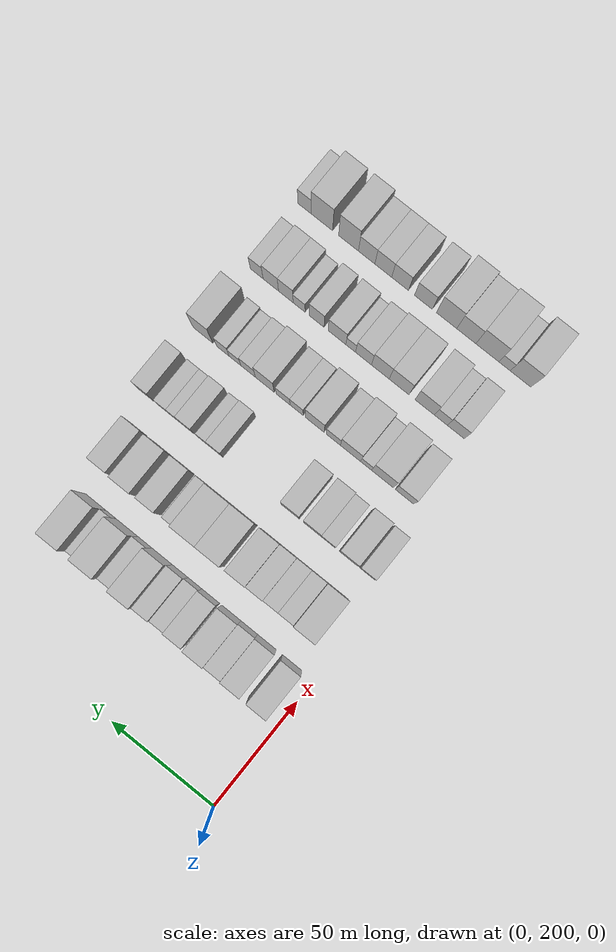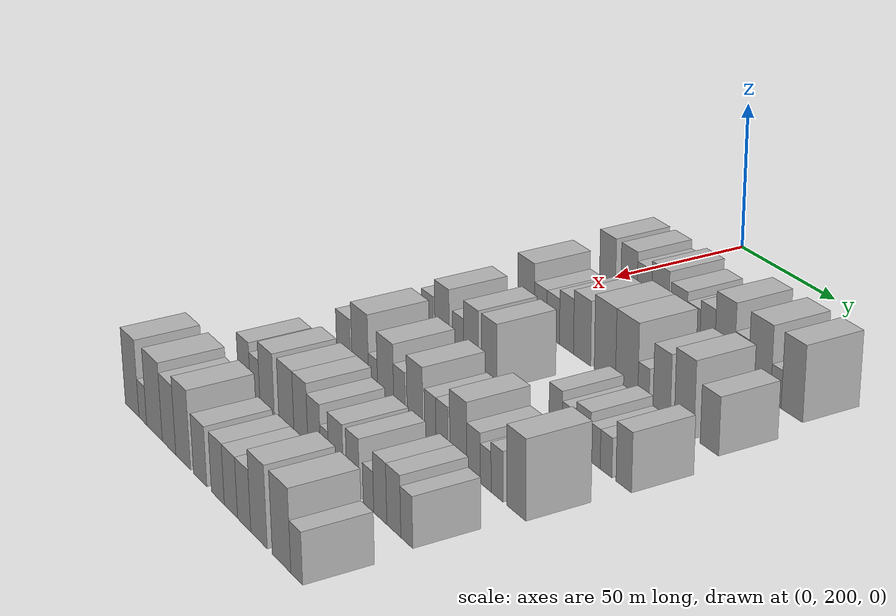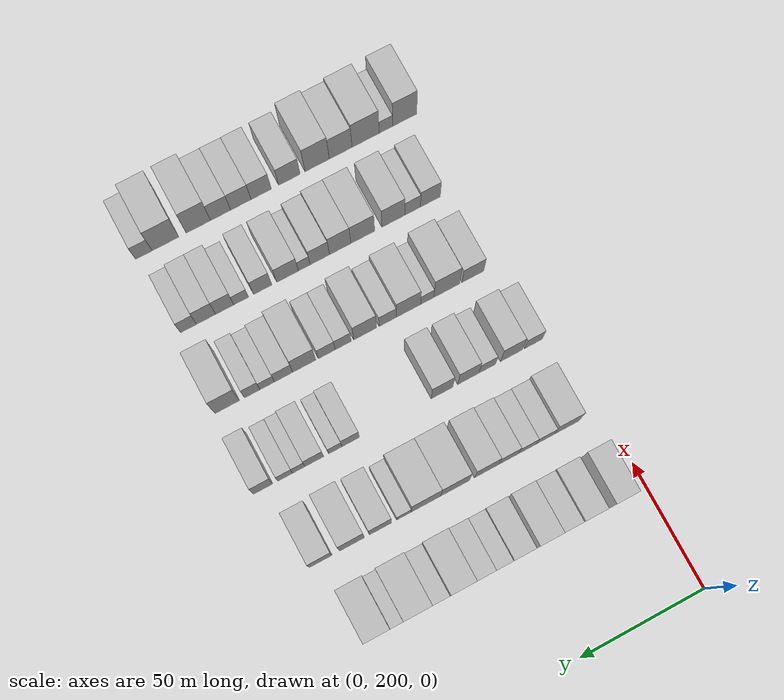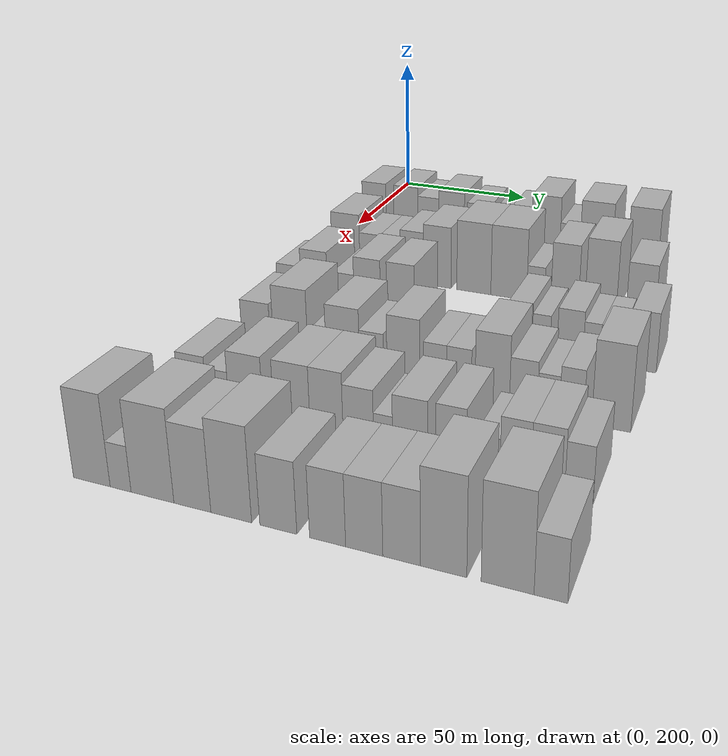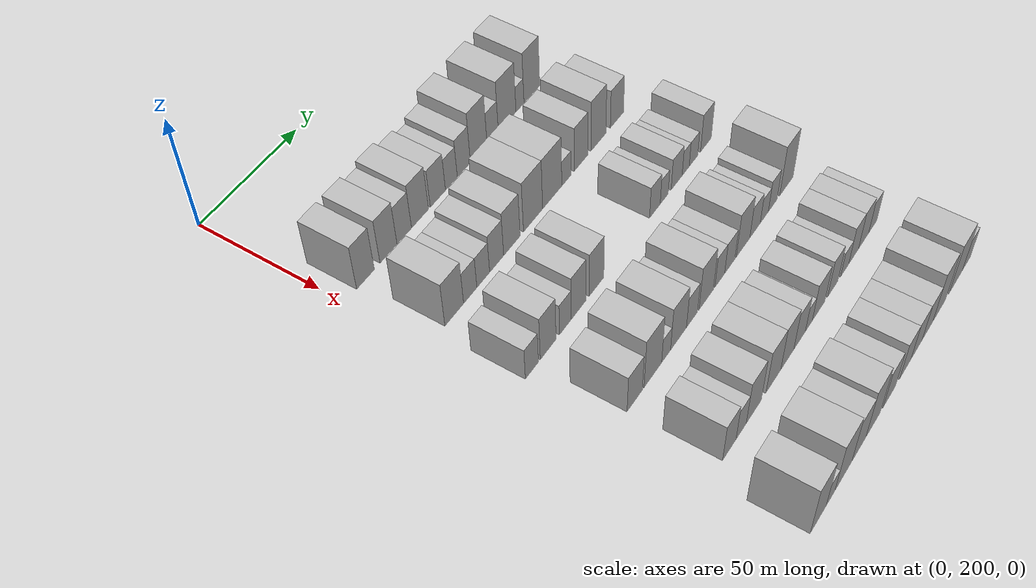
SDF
<sdf version="1.6">
 <world name="default">
  <model name="building_86">
   <static>1</static>
   <pose>50.0000 210.8709 0 0.000000 0.000000 0.000000</pose>
   <link name="link">
    <pose>0 0 10.50 0 0 0</pose>
    <collision name="collision"><geometry><box><size>20.0000 9.3050 21.0000</size></box></geometry></collision>
    <visual name="visual">
     <cast_shadows>0</cast_shadows>
     <geometry><box><size>20.0000 9.3050 21.0000</size></box></geometry>
     <material>
      <script>
       <uri>model://HANNAS_wall/materials/scripts</uri>
       <uri>model://HANNAS_wall/materials/textures</uri>
       <name>vrc/HANNAS_wall</name>
      </script>
     </material>
    </visual>
   </link>
  </model>
  <model name="building_87">
   <static>1</static>
   <pose>50.0000 223.1033 0 0.000000 0.000000 0.000000</pose>
   <link name="link">
    <pose>0 0 10.50 0 0 0</pose>
    <collision name="collision"><geometry><box><size>20.0000 9.1599 21.0000</size></box></geometry></collision>
    <visual name="visual">
     <cast_shadows>0</cast_shadows>
     <geometry><box><size>20.0000 9.1599 21.0000</size></box></geometry>
     <material>
      <script>
       <uri>model://HANNAS_wall/materials/scripts</uri>
       <uri>model://HANNAS_wall/materials/textures</uri>
       <name>vrc/HANNAS_wall</name>
      </script>
     </material>
    </visual>
   </link>
  </model>
  <model name="building_88">
   <static>1</static>
   <pose>50.0000 231.6786 0 0.000000 0.000000 0.000000</pose>
   <link name="link">
    <pose>0 0 9.00 0 0 0</pose>
    <collision name="collision"><geometry><box><size>20.0000 7.9906 18.0000</size></box></geometry></collision>
    <visual name="visual">
     <cast_shadows>0</cast_shadows>
     <geometry><box><size>20.0000 7.9906 18.0000</size></box></geometry>
     <material>
      <script>
       <uri>model://HANNAS_wall/materials/scripts</uri>
       <uri>model://HANNAS_wall/materials/textures</uri>
       <name>vrc/HANNAS_wall</name>
      </script>
     </material>
    </visual>
   </link>
  </model>
  <model name="building_89">
   <static>1</static>
   <pose>50.0000 240.4279 0 0.000000 0.000000 0.000000</pose>
   <link name="link">
    <pose>0 0 10.50 0 0 0</pose>
    <collision name="collision"><geometry><box><size>20.0000 9.5080 21.0000</size></box></geometry></collision>
    <visual name="visual">
     <cast_shadows>0</cast_shadows>
     <geometry><box><size>20.0000 9.5080 21.0000</size></box></geometry>
     <material>
      <script>
       <uri>model://HANNAS_wall/materials/scripts</uri>
       <uri>model://HANNAS_wall/materials/textures</uri>
       <name>vrc/HANNAS_wall</name>
      </script>
     </material>
    </visual>
   </link>
  </model>
  <model name="building_90">
   <static>1</static>
   <pose>50.0000 250.5385 0 0.000000 0.000000 0.000000</pose>
   <link name="link">
    <pose>0 0 9.00 0 0 0</pose>
    <collision name="collision"><geometry><box><size>20.0000 8.7133 18.0000</size></box></geometry></collision>
    <visual name="visual">
     <cast_shadows>0</cast_shadows>
     <geometry><box><size>20.0000 8.7133 18.0000</size></box></geometry>
     <material>
      <script>
       <uri>model://HANNAS_wall/materials/scripts</uri>
       <uri>model://HANNAS_wall/materials/textures</uri>
       <name>vrc/HANNAS_wall</name>
      </script>
     </material>
    </visual>
   </link>
  </model>
  <model name="building_91">
   <static>1</static>
   <pose>50.0000 258.3397 0 0.000000 0.000000 0.000000</pose>
   <link name="link">
    <pose>0 0 7.50 0 0 0</pose>
    <collision name="collision"><geometry><box><size>20.0000 6.8891 15.0000</size></box></geometry></collision>
    <visual name="visual">
     <cast_shadows>0</cast_shadows>
     <geometry><box><size>20.0000 6.8891 15.0000</size></box></geometry>
     <material>
      <script>
       <uri>model://HANNAS_wall/materials/scripts</uri>
       <uri>model://HANNAS_wall/materials/textures</uri>
       <name>vrc/HANNAS_wall</name>
      </script>
     </material>
    </visual>
   </link>
  </model>
  <model name="building_92">
   <static>1</static>
   <pose>50.0000 265.6655 0 0.000000 0.000000 0.000000</pose>
   <link name="link">
    <pose>0 0 9.00 0 0 0</pose>
    <collision name="collision"><geometry><box><size>20.0000 7.7623 18.0000</size></box></geometry></collision>
    <visual name="visual">
     <cast_shadows>0</cast_shadows>
     <geometry><box><size>20.0000 7.7623 18.0000</size></box></geometry>
     <material>
      <script>
       <uri>model://HANNAS_wall/materials/scripts</uri>
       <uri>model://HANNAS_wall/materials/textures</uri>
       <name>vrc/HANNAS_wall</name>
      </script>
     </material>
    </visual>
   </link>
  </model>
  <model name="building_93">
   <static>1</static>
   <pose>50.0000 274.5606 0 0.000000 0.000000 0.000000</pose>
   <link name="link">
    <pose>0 0 12.00 0 0 0</pose>
    <collision name="collision"><geometry><box><size>20.0000 10.0280 24.0000</size></box></geometry></collision>
    <visual name="visual">
     <cast_shadows>0</cast_shadows>
     <geometry><box><size>20.0000 10.0280 24.0000</size></box></geometry>
     <material>
      <script>
       <uri>model://HANNAS_wall/materials/scripts</uri>
       <uri>model://HANNAS_wall/materials/textures</uri>
       <name>vrc/HANNAS_wall</name>
      </script>
     </material>
    </visual>
   </link>
  </model>
  <model name="building_94">
   <static>1</static>
   <pose>50.0000 283.0407 0 0.000000 0.000000 0.000000</pose>
   <link name="link">
    <pose>0 0 7.50 0 0 0</pose>
    <collision name="collision"><geometry><box><size>20.0000 6.9321 15.0000</size></box></geometry></collision>
    <visual name="visual">
     <cast_shadows>0</cast_shadows>
     <geometry><box><size>20.0000 6.9321 15.0000</size></box></geometry>
     <material>
      <script>
       <uri>model://HANNAS_wall/materials/scripts</uri>
       <uri>model://HANNAS_wall/materials/textures</uri>
       <name>vrc/HANNAS_wall</name>
      </script>
     </material>
    </visual>
   </link>
  </model>
  <model name="building_95">
   <static>1</static>
   <pose>50.0000 292.0374 0 0.000000 0.000000 0.000000</pose>
   <link name="link">
    <pose>0 0 12.00 0 0 0</pose>
    <collision name="collision"><geometry><box><size>20.0000 11.0614 24.0000</size></box></geometry></collision>
    <visual name="visual">
     <cast_shadows>0</cast_shadows>
     <geometry><box><size>20.0000 11.0614 24.0000</size></box></geometry>
     <material>
      <script>
       <uri>model://HANNAS_wall/materials/scripts</uri>
       <uri>model://HANNAS_wall/materials/textures</uri>
       <name>vrc/HANNAS_wall</name>
      </script>
     </material>
    </visual>
   </link>
  </model>
  <model name="building_96">
   <static>1</static>
   <pose>50.0000 300.1126 0 0.000000 0.000000 0.000000</pose>
   <link name="link">
    <pose>0 0 6.00 0 0 0</pose>
    <collision name="collision"><geometry><box><size>20.0000 5.0889 12.0000</size></box></geometry></collision>
    <visual name="visual">
     <cast_shadows>0</cast_shadows>
     <geometry><box><size>20.0000 5.0889 12.0000</size></box></geometry>
     <material>
      <script>
       <uri>model://HANNAS_wall/materials/scripts</uri>
       <uri>model://HANNAS_wall/materials/textures</uri>
       <name>vrc/HANNAS_wall</name>
      </script>
     </material>
    </visual>
   </link>
  </model>
  <model name="building_97">
   <static>1</static>
   <pose>50.0000 307.7394 0 0.000000 0.000000 0.000000</pose>
   <link name="link">
    <pose>0 0 12.00 0 0 0</pose>
    <collision name="collision"><geometry><box><size>20.0000 10.1646 24.0000</size></box></geometry></collision>
    <visual name="visual">
     <cast_shadows>0</cast_shadows>
     <geometry><box><size>20.0000 10.1646 24.0000</size></box></geometry>
     <material>
      <script>
       <uri>model://HANNAS_wall/materials/scripts</uri>
       <uri>model://HANNAS_wall/materials/textures</uri>
       <name>vrc/HANNAS_wall</name>
      </script>
     </material>
    </visual>
   </link>
  </model>
  <model name="building_206">
   <static>1</static>
   <pose>82.0000 214.4088 0 0.000000 0.000000 0.000000</pose>
   <link name="link">
    <pose>0 0 10.50 0 0 0</pose>
    <collision name="collision"><geometry><box><size>20.0000 10.1849 21.0000</size></box></geometry></collision>
    <visual name="visual">
     <cast_shadows>0</cast_shadows>
     <geometry><box><size>20.0000 10.1849 21.0000</size></box></geometry>
     <material>
      <script>
       <uri>model://HANNAS_wall/materials/scripts</uri>
       <uri>model://HANNAS_wall/materials/textures</uri>
       <name>vrc/HANNAS_wall</name>
      </script>
     </material>
    </visual>
   </link>
  </model>
  <model name="building_207">
   <static>1</static>
   <pose>82.0000 223.1774 0 0.000000 0.000000 0.000000</pose>
   <link name="link">
    <pose>0 0 7.50 0 0 0</pose>
    <collision name="collision"><geometry><box><size>20.0000 7.3523 15.0000</size></box></geometry></collision>
    <visual name="visual">
     <cast_shadows>0</cast_shadows>
     <geometry><box><size>20.0000 7.3523 15.0000</size></box></geometry>
     <material>
      <script>
       <uri>model://HANNAS_wall/materials/scripts</uri>
       <uri>model://HANNAS_wall/materials/textures</uri>
       <name>vrc/HANNAS_wall</name>
      </script>
     </material>
    </visual>
   </link>
  </model>
  <model name="building_208">
   <static>1</static>
   <pose>82.0000 230.4560 0 0.000000 0.000000 0.000000</pose>
   <link name="link">
    <pose>0 0 7.50 0 0 0</pose>
    <collision name="collision"><geometry><box><size>20.0000 7.2049 15.0000</size></box></geometry></collision>
    <visual name="visual">
     <cast_shadows>0</cast_shadows>
     <geometry><box><size>20.0000 7.2049 15.0000</size></box></geometry>
     <material>
      <script>
       <uri>model://HANNAS_wall/materials/scripts</uri>
       <uri>model://HANNAS_wall/materials/textures</uri>
       <name>vrc/HANNAS_wall</name>
      </script>
     </material>
    </visual>
   </link>
  </model>
  <model name="building_209">
   <static>1</static>
   <pose>82.0000 238.0811 0 0.000000 0.000000 0.000000</pose>
   <link name="link">
    <pose>0 0 9.00 0 0 0</pose>
    <collision name="collision"><geometry><box><size>20.0000 8.0453 18.0000</size></box></geometry></collision>
    <visual name="visual">
     <cast_shadows>0</cast_shadows>
     <geometry><box><size>20.0000 8.0453 18.0000</size></box></geometry>
     <material>
      <script>
       <uri>model://HANNAS_wall/materials/scripts</uri>
       <uri>model://HANNAS_wall/materials/textures</uri>
       <name>vrc/HANNAS_wall</name>
      </script>
     </material>
    </visual>
   </link>
  </model>
  <model name="building_210">
   <static>1</static>
   <pose>82.0000 246.9107 0 0.000000 0.000000 0.000000</pose>
   <link name="link">
    <pose>0 0 10.50 0 0 0</pose>
    <collision name="collision"><geometry><box><size>20.0000 9.6140 21.0000</size></box></geometry></collision>
    <visual name="visual">
     <cast_shadows>0</cast_shadows>
     <geometry><box><size>20.0000 9.6140 21.0000</size></box></geometry>
     <material>
      <script>
       <uri>model://HANNAS_wall/materials/scripts</uri>
       <uri>model://HANNAS_wall/materials/textures</uri>
       <name>vrc/HANNAS_wall</name>
      </script>
     </material>
    </visual>
   </link>
  </model>
  <model name="building_211">
   <static>1</static>
   <pose>82.0000 259.4785 0 0.000000 0.000000 0.000000</pose>
   <link name="link">
    <pose>0 0 12.00 0 0 0</pose>
    <collision name="collision"><geometry><box><size>20.0000 11.5215 24.0000</size></box></geometry></collision>
    <visual name="visual">
     <cast_shadows>0</cast_shadows>
     <geometry><box><size>20.0000 11.5215 24.0000</size></box></geometry>
     <material>
      <script>
       <uri>model://HANNAS_wall/materials/scripts</uri>
       <uri>model://HANNAS_wall/materials/textures</uri>
       <name>vrc/HANNAS_wall</name>
      </script>
     </material>
    </visual>
   </link>
  </model>
  <model name="building_212">
   <static>1</static>
   <pose>82.0000 271.1553 0 0.000000 0.000000 0.000000</pose>
   <link name="link">
    <pose>0 0 12.00 0 0 0</pose>
    <collision name="collision"><geometry><box><size>20.0000 11.8322 24.0000</size></box></geometry></collision>
    <visual name="visual">
     <cast_shadows>0</cast_shadows>
     <geometry><box><size>20.0000 11.8322 24.0000</size></box></geometry>
     <material>
      <script>
       <uri>model://HANNAS_wall/materials/scripts</uri>
       <uri>model://HANNAS_wall/materials/textures</uri>
       <name>vrc/HANNAS_wall</name>
      </script>
     </material>
    </visual>
   </link>
  </model>
  <model name="building_213">
   <static>1</static>
   <pose>82.0000 279.9826 0 0.000000 0.000000 0.000000</pose>
   <link name="link">
    <pose>0 0 6.00 0 0 0</pose>
    <collision name="collision"><geometry><box><size>20.0000 5.8225 12.0000</size></box></geometry></collision>
    <visual name="visual">
     <cast_shadows>0</cast_shadows>
     <geometry><box><size>20.0000 5.8225 12.0000</size></box></geometry>
     <material>
      <script>
       <uri>model://HANNAS_wall/materials/scripts</uri>
       <uri>model://HANNAS_wall/materials/textures</uri>
       <name>vrc/HANNAS_wall</name>
      </script>
     </material>
    </visual>
   </link>
  </model>
  <model name="building_214">
   <static>1</static>
   <pose>82.0000 289.2925 0 0.000000 0.000000 0.000000</pose>
   <link name="link">
    <pose>0 0 10.50 0 0 0</pose>
    <collision name="collision"><geometry><box><size>20.0000 8.7972 21.0000</size></box></geometry></collision>
    <visual name="visual">
     <cast_shadows>0</cast_shadows>
     <geometry><box><size>20.0000 8.7972 21.0000</size></box></geometry>
     <material>
      <script>
       <uri>model://HANNAS_wall/materials/scripts</uri>
       <uri>model://HANNAS_wall/materials/textures</uri>
       <name>vrc/HANNAS_wall</name>
      </script>
     </material>
    </visual>
   </link>
  </model>
  <model name="building_215">
   <static>1</static>
   <pose>82.0000 300.5843 0 0.000000 0.000000 0.000000</pose>
   <link name="link">
    <pose>0 0 12.00 0 0 0</pose>
    <collision name="collision"><geometry><box><size>20.0000 9.7864 24.0000</size></box></geometry></collision>
    <visual name="visual">
     <cast_shadows>0</cast_shadows>
     <geometry><box><size>20.0000 9.7864 24.0000</size></box></geometry>
     <material>
      <script>
       <uri>model://HANNAS_wall/materials/scripts</uri>
       <uri>model://HANNAS_wall/materials/textures</uri>
       <name>vrc/HANNAS_wall</name>
      </script>
     </material>
    </visual>
   </link>
  </model>
  <model name="building_216">
   <static>1</static>
   <pose>82.0000 312.9188 0 0.000000 0.000000 0.000000</pose>
   <link name="link">
    <pose>0 0 9.00 0 0 0</pose>
    <collision name="collision"><geometry><box><size>20.0000 8.8826 18.0000</size></box></geometry></collision>
    <visual name="visual">
     <cast_shadows>0</cast_shadows>
     <geometry><box><size>20.0000 8.8826 18.0000</size></box></geometry>
     <material>
      <script>
       <uri>model://HANNAS_wall/materials/scripts</uri>
       <uri>model://HANNAS_wall/materials/textures</uri>
       <name>vrc/HANNAS_wall</name>
      </script>
     </material>
    </visual>
   </link>
  </model>
  <model name="building_329">
   <static>1</static>
   <pose>114.0000 209.7534 0 0.000000 0.000000 0.000000</pose>
   <link name="link">
    <pose>0 0 7.50 0 0 0</pose>
    <collision name="collision"><geometry><box><size>20.0000 7.2609 15.0000</size></box></geometry></collision>
    <visual name="visual">
     <cast_shadows>0</cast_shadows>
     <geometry><box><size>20.0000 7.2609 15.0000</size></box></geometry>
     <material>
      <script>
       <uri>model://HANNAS_wall/materials/scripts</uri>
       <uri>model://HANNAS_wall/materials/textures</uri>
       <name>vrc/HANNAS_wall</name>
      </script>
     </material>
    </visual>
   </link>
  </model>
  <model name="building_330">
   <static>1</static>
   <pose>114.0000 218.8555 0 0.000000 0.000000 0.000000</pose>
   <link name="link">
    <pose>0 0 10.50 0 0 0</pose>
    <collision name="collision"><geometry><box><size>20.0000 8.9432 21.0000</size></box></geometry></collision>
    <visual name="visual">
     <cast_shadows>0</cast_shadows>
     <geometry><box><size>20.0000 8.9432 21.0000</size></box></geometry>
     <material>
      <script>
       <uri>model://HANNAS_wall/materials/scripts</uri>
       <uri>model://HANNAS_wall/materials/textures</uri>
       <name>vrc/HANNAS_wall</name>
      </script>
     </material>
    </visual>
   </link>
  </model>
  <model name="building_331">
   <static>1</static>
   <pose>114.0000 228.7389 0 0.000000 0.000000 0.000000</pose>
   <link name="link">
    <pose>0 0 7.50 0 0 0</pose>
    <collision name="collision"><geometry><box><size>20.0000 6.8235 15.0000</size></box></geometry></collision>
    <visual name="visual">
     <cast_shadows>0</cast_shadows>
     <geometry><box><size>20.0000 6.8235 15.0000</size></box></geometry>
     <material>
      <script>
       <uri>model://HANNAS_wall/materials/scripts</uri>
       <uri>model://HANNAS_wall/materials/textures</uri>
       <name>vrc/HANNAS_wall</name>
      </script>
     </material>
    </visual>
   </link>
  </model>
  <model name="building_332">
   <static>1</static>
   <pose>114.0000 236.4679 0 0.000000 0.000000 0.000000</pose>
   <link name="link">
    <pose>0 0 10.50 0 0 0</pose>
    <collision name="collision"><geometry><box><size>20.0000 8.6347 21.0000</size></box></geometry></collision>
    <visual name="visual">
     <cast_shadows>0</cast_shadows>
     <geometry><box><size>20.0000 8.6347 21.0000</size></box></geometry>
     <material>
      <script>
       <uri>model://HANNAS_wall/materials/scripts</uri>
       <uri>model://HANNAS_wall/materials/textures</uri>
       <name>vrc/HANNAS_wall</name>
      </script>
     </material>
    </visual>
   </link>
  </model>
  <model name="building_333">
   <static>1</static>
   <pose>114.0000 247.1889 0 0.000000 0.000000 0.000000</pose>
   <link name="link">
    <pose>0 0 10.50 0 0 0</pose>
    <collision name="collision"><geometry><box><size>20.0000 8.8072 21.0000</size></box></geometry></collision>
    <visual name="visual">
     <cast_shadows>0</cast_shadows>
     <geometry><box><size>20.0000 8.8072 21.0000</size></box></geometry>
     <material>
      <script>
       <uri>model://HANNAS_wall/materials/scripts</uri>
       <uri>model://HANNAS_wall/materials/textures</uri>
       <name>vrc/HANNAS_wall</name>
      </script>
     </material>
    </visual>
   </link>
  </model>
  <model name="building_334">
   <static>1</static>
   <pose>114.0000 284.0909 0 0.000000 0.000000 0.000000</pose>
   <link name="link">
    <pose>0 0 7.50 0 0 0</pose>
    <collision name="collision"><geometry><box><size>20.0000 6.9989 15.0000</size></box></geometry></collision>
    <visual name="visual">
     <cast_shadows>0</cast_shadows>
     <geometry><box><size>20.0000 6.9989 15.0000</size></box></geometry>
     <material>
      <script>
       <uri>model://HANNAS_wall/materials/scripts</uri>
       <uri>model://HANNAS_wall/materials/textures</uri>
       <name>vrc/HANNAS_wall</name>
      </script>
     </material>
    </visual>
   </link>
  </model>
  <model name="building_335">
   <static>1</static>
   <pose>114.0000 290.2425 0 0.000000 0.000000 0.000000</pose>
   <link name="link">
    <pose>0 0 6.00 0 0 0</pose>
    <collision name="collision"><geometry><box><size>20.0000 5.3043 12.0000</size></box></geometry></collision>
    <visual name="visual">
     <cast_shadows>0</cast_shadows>
     <geometry><box><size>20.0000 5.3043 12.0000</size></box></geometry>
     <material>
      <script>
       <uri>model://HANNAS_wall/materials/scripts</uri>
       <uri>model://HANNAS_wall/materials/textures</uri>
       <name>vrc/HANNAS_wall</name>
      </script>
     </material>
    </visual>
   </link>
  </model>
  <model name="building_336">
   <static>1</static>
   <pose>114.0000 298.6446 0 0.000000 0.000000 0.000000</pose>
   <link name="link">
    <pose>0 0 7.50 0 0 0</pose>
    <collision name="collision"><geometry><box><size>20.0000 7.4999 15.0000</size></box></geometry></collision>
    <visual name="visual">
     <cast_shadows>0</cast_shadows>
     <geometry><box><size>20.0000 7.4999 15.0000</size></box></geometry>
     <material>
      <script>
       <uri>model://HANNAS_wall/materials/scripts</uri>
       <uri>model://HANNAS_wall/materials/textures</uri>
       <name>vrc/HANNAS_wall</name>
      </script>
     </material>
    </visual>
   </link>
  </model>
  <model name="building_337">
   <static>1</static>
   <pose>114.0000 304.8210 0 0.000000 0.000000 0.000000</pose>
   <link name="link">
    <pose>0 0 6.00 0 0 0</pose>
    <collision name="collision"><geometry><box><size>20.0000 4.8528 12.0000</size></box></geometry></collision>
    <visual name="visual">
     <cast_shadows>0</cast_shadows>
     <geometry><box><size>20.0000 4.8528 12.0000</size></box></geometry>
     <material>
      <script>
       <uri>model://HANNAS_wall/materials/scripts</uri>
       <uri>model://HANNAS_wall/materials/textures</uri>
       <name>vrc/HANNAS_wall</name>
      </script>
     </material>
    </visual>
   </link>
  </model>
  <model name="building_338">
   <static>1</static>
   <pose>114.0000 310.2039 0 0.000000 0.000000 0.000000</pose>
   <link name="link">
    <pose>0 0 6.00 0 0 0</pose>
    <collision name="collision"><geometry><box><size>20.0000 5.9131 12.0000</size></box></geometry></collision>
    <visual name="visual">
     <cast_shadows>0</cast_shadows>
     <geometry><box><size>20.0000 5.9131 12.0000</size></box></geometry>
     <material>
      <script>
       <uri>model://HANNAS_wall/materials/scripts</uri>
       <uri>model://HANNAS_wall/materials/textures</uri>
       <name>vrc/HANNAS_wall</name>
      </script>
     </material>
    </visual>
   </link>
  </model>
  <model name="building_339">
   <static>1</static>
   <pose>114.0000 318.9632 0 0.000000 0.000000 0.000000</pose>
   <link name="link">
    <pose>0 0 9.00 0 0 0</pose>
    <collision name="collision"><geometry><box><size>20.0000 7.6055 18.0000</size></box></geometry></collision>
    <visual name="visual">
     <cast_shadows>0</cast_shadows>
     <geometry><box><size>20.0000 7.6055 18.0000</size></box></geometry>
     <material>
      <script>
       <uri>model://HANNAS_wall/materials/scripts</uri>
       <uri>model://HANNAS_wall/materials/textures</uri>
       <name>vrc/HANNAS_wall</name>
      </script>
     </material>
    </visual>
   </link>
  </model>
  <model name="building_446">
   <static>1</static>
   <pose>146.0000 216.8978 0 0.000000 0.000000 0.000000</pose>
   <link name="link">
    <pose>0 0 9.00 0 0 0</pose>
    <collision name="collision"><geometry><box><size>20.0000 8.9767 18.0000</size></box></geometry></collision>
    <visual name="visual">
     <cast_shadows>0</cast_shadows>
     <geometry><box><size>20.0000 8.9767 18.0000</size></box></geometry>
     <material>
      <script>
       <uri>model://HANNAS_wall/materials/scripts</uri>
       <uri>model://HANNAS_wall/materials/textures</uri>
       <name>vrc/HANNAS_wall</name>
      </script>
     </material>
    </visual>
   </link>
  </model>
  <model name="building_447">
   <static>1</static>
   <pose>146.0000 227.6696 0 0.000000 0.000000 0.000000</pose>
   <link name="link">
    <pose>0 0 12.00 0 0 0</pose>
    <collision name="collision"><geometry><box><size>20.0000 10.5668 24.0000</size></box></geometry></collision>
    <visual name="visual">
     <cast_shadows>0</cast_shadows>
     <geometry><box><size>20.0000 10.5668 24.0000</size></box></geometry>
     <material>
      <script>
       <uri>model://HANNAS_wall/materials/scripts</uri>
       <uri>model://HANNAS_wall/materials/textures</uri>
       <name>vrc/HANNAS_wall</name>
      </script>
     </material>
    </visual>
   </link>
  </model>
  <model name="building_448">
   <static>1</static>
   <pose>146.0000 235.7002 0 0.000000 0.000000 0.000000</pose>
   <link name="link">
    <pose>0 0 6.00 0 0 0</pose>
    <collision name="collision"><geometry><box><size>20.0000 5.4943 12.0000</size></box></geometry></collision>
    <visual name="visual">
     <cast_shadows>0</cast_shadows>
     <geometry><box><size>20.0000 5.4943 12.0000</size></box></geometry>
     <material>
      <script>
       <uri>model://HANNAS_wall/materials/scripts</uri>
       <uri>model://HANNAS_wall/materials/textures</uri>
       <name>vrc/HANNAS_wall</name>
      </script>
     </material>
    </visual>
   </link>
  </model>
  <model name="building_449">
   <static>1</static>
   <pose>146.0000 243.4178 0 0.000000 0.000000 0.000000</pose>
   <link name="link">
    <pose>0 0 10.50 0 0 0</pose>
    <collision name="collision"><geometry><box><size>20.0000 9.9409 21.0000</size></box></geometry></collision>
    <visual name="visual">
     <cast_shadows>0</cast_shadows>
     <geometry><box><size>20.0000 9.9409 21.0000</size></box></geometry>
     <material>
      <script>
       <uri>model://HANNAS_wall/materials/scripts</uri>
       <uri>model://HANNAS_wall/materials/textures</uri>
       <name>vrc/HANNAS_wall</name>
      </script>
     </material>
    </visual>
   </link>
  </model>
  <model name="building_450">
   <static>1</static>
   <pose>146.0000 251.9027 0 0.000000 0.000000 0.000000</pose>
   <link name="link">
    <pose>0 0 7.50 0 0 0</pose>
    <collision name="collision"><geometry><box><size>20.0000 7.0290 15.0000</size></box></geometry></collision>
    <visual name="visual">
     <cast_shadows>0</cast_shadows>
     <geometry><box><size>20.0000 7.0290 15.0000</size></box></geometry>
     <material>
      <script>
       <uri>model://HANNAS_wall/materials/scripts</uri>
       <uri>model://HANNAS_wall/materials/textures</uri>
       <name>vrc/HANNAS_wall</name>
      </script>
     </material>
    </visual>
   </link>
  </model>
  <model name="building_451">
   <static>1</static>
   <pose>146.0000 261.0871 0 0.000000 0.000000 0.000000</pose>
   <link name="link">
    <pose>0 0 10.50 0 0 0</pose>
    <collision name="collision"><geometry><box><size>20.0000 9.3398 21.0000</size></box></geometry></collision>
    <visual name="visual">
     <cast_shadows>0</cast_shadows>
     <geometry><box><size>20.0000 9.3398 21.0000</size></box></geometry>
     <material>
      <script>
       <uri>model://HANNAS_wall/materials/scripts</uri>
       <uri>model://HANNAS_wall/materials/textures</uri>
       <name>vrc/HANNAS_wall</name>
      </script>
     </material>
    </visual>
   </link>
  </model>
  <model name="building_452">
   <static>1</static>
   <pose>146.0000 270.0043 0 0.000000 0.000000 0.000000</pose>
   <link name="link">
    <pose>0 0 7.50 0 0 0</pose>
    <collision name="collision"><geometry><box><size>20.0000 6.4947 15.0000</size></box></geometry></collision>
    <visual name="visual">
     <cast_shadows>0</cast_shadows>
     <geometry><box><size>20.0000 6.4947 15.0000</size></box></geometry>
     <material>
      <script>
       <uri>model://HANNAS_wall/materials/scripts</uri>
       <uri>model://HANNAS_wall/materials/textures</uri>
       <name>vrc/HANNAS_wall</name>
      </script>
     </material>
    </visual>
   </link>
  </model>
  <model name="building_453">
   <static>1</static>
   <pose>146.0000 276.6869 0 0.000000 0.000000 0.000000</pose>
   <link name="link">
    <pose>0 0 7.50 0 0 0</pose>
    <collision name="collision"><geometry><box><size>20.0000 6.8703 15.0000</size></box></geometry></collision>
    <visual name="visual">
     <cast_shadows>0</cast_shadows>
     <geometry><box><size>20.0000 6.8703 15.0000</size></box></geometry>
     <material>
      <script>
       <uri>model://HANNAS_wall/materials/scripts</uri>
       <uri>model://HANNAS_wall/materials/textures</uri>
       <name>vrc/HANNAS_wall</name>
      </script>
     </material>
    </visual>
   </link>
  </model>
  <model name="building_454">
   <static>1</static>
   <pose>146.0000 285.7940 0 0.000000 0.000000 0.000000</pose>
   <link name="link">
    <pose>0 0 10.50 0 0 0</pose>
    <collision name="collision"><geometry><box><size>20.0000 9.3439 21.0000</size></box></geometry></collision>
    <visual name="visual">
     <cast_shadows>0</cast_shadows>
     <geometry><box><size>20.0000 9.3439 21.0000</size></box></geometry>
     <material>
      <script>
       <uri>model://HANNAS_wall/materials/scripts</uri>
       <uri>model://HANNAS_wall/materials/textures</uri>
       <name>vrc/HANNAS_wall</name>
      </script>
     </material>
    </visual>
   </link>
  </model>
  <model name="building_455">
   <static>1</static>
   <pose>146.0000 294.1418 0 0.000000 0.000000 0.000000</pose>
   <link name="link">
    <pose>0 0 7.50 0 0 0</pose>
    <collision name="collision"><geometry><box><size>20.0000 7.3519 15.0000</size></box></geometry></collision>
    <visual name="visual">
     <cast_shadows>0</cast_shadows>
     <geometry><box><size>20.0000 7.3519 15.0000</size></box></geometry>
     <material>
      <script>
       <uri>model://HANNAS_wall/materials/scripts</uri>
       <uri>model://HANNAS_wall/materials/textures</uri>
       <name>vrc/HANNAS_wall</name>
      </script>
     </material>
    </visual>
   </link>
  </model>
  <model name="building_456">
   <static>1</static>
   <pose>146.0000 300.7060 0 0.000000 0.000000 0.000000</pose>
   <link name="link">
    <pose>0 0 6.00 0 0 0</pose>
    <collision name="collision"><geometry><box><size>20.0000 5.7764 12.0000</size></box></geometry></collision>
    <visual name="visual">
     <cast_shadows>0</cast_shadows>
     <geometry><box><size>20.0000 5.7764 12.0000</size></box></geometry>
     <material>
      <script>
       <uri>model://HANNAS_wall/materials/scripts</uri>
       <uri>model://HANNAS_wall/materials/textures</uri>
       <name>vrc/HANNAS_wall</name>
      </script>
     </material>
    </visual>
   </link>
  </model>
  <model name="building_457">
   <static>1</static>
   <pose>146.0000 306.7237 0 0.000000 0.000000 0.000000</pose>
   <link name="link">
    <pose>0 0 7.50 0 0 0</pose>
    <collision name="collision"><geometry><box><size>20.0000 6.2591 15.0000</size></box></geometry></collision>
    <visual name="visual">
     <cast_shadows>0</cast_shadows>
     <geometry><box><size>20.0000 6.2591 15.0000</size></box></geometry>
     <material>
      <script>
       <uri>model://HANNAS_wall/materials/scripts</uri>
       <uri>model://HANNAS_wall/materials/textures</uri>
       <name>vrc/HANNAS_wall</name>
      </script>
     </material>
    </visual>
   </link>
  </model>
  <model name="building_458">
   <static>1</static>
   <pose>146.0000 316.7548 0 0.000000 0.000000 0.000000</pose>
   <link name="link">
    <pose>0 0 12.00 0 0 0</pose>
    <collision name="collision"><geometry><box><size>20.0000 9.8031 24.0000</size></box></geometry></collision>
    <visual name="visual">
     <cast_shadows>0</cast_shadows>
     <geometry><box><size>20.0000 9.8031 24.0000</size></box></geometry>
     <material>
      <script>
       <uri>model://HANNAS_wall/materials/scripts</uri>
       <uri>model://HANNAS_wall/materials/textures</uri>
       <name>vrc/HANNAS_wall</name>
      </script>
     </material>
    </visual>
   </link>
  </model>
  <model name="building_564">
   <static>1</static>
   <pose>178.0000 216.9423 0 0.000000 0.000000 0.000000</pose>
   <link name="link">
    <pose>0 0 9.00 0 0 0</pose>
    <collision name="collision"><geometry><box><size>20.0000 8.2424 18.0000</size></box></geometry></collision>
    <visual name="visual">
     <cast_shadows>0</cast_shadows>
     <geometry><box><size>20.0000 8.2424 18.0000</size></box></geometry>
     <material>
      <script>
       <uri>model://HANNAS_wall/materials/scripts</uri>
       <uri>model://HANNAS_wall/materials/textures</uri>
       <name>vrc/HANNAS_wall</name>
      </script>
     </material>
    </visual>
   </link>
  </model>
  <model name="building_565">
   <static>1</static>
   <pose>178.0000 224.2583 0 0.000000 0.000000 0.000000</pose>
   <link name="link">
    <pose>0 0 7.50 0 0 0</pose>
    <collision name="collision"><geometry><box><size>20.0000 6.3896 15.0000</size></box></geometry></collision>
    <visual name="visual">
     <cast_shadows>0</cast_shadows>
     <geometry><box><size>20.0000 6.3896 15.0000</size></box></geometry>
     <material>
      <script>
       <uri>model://HANNAS_wall/materials/scripts</uri>
       <uri>model://HANNAS_wall/materials/textures</uri>
       <name>vrc/HANNAS_wall</name>
      </script>
     </material>
    </visual>
   </link>
  </model>
  <model name="building_566">
   <static>1</static>
   <pose>178.0000 232.2439 0 0.000000 0.000000 0.000000</pose>
   <link name="link">
    <pose>0 0 10.50 0 0 0</pose>
    <collision name="collision"><geometry><box><size>20.0000 9.5816 21.0000</size></box></geometry></collision>
    <visual name="visual">
     <cast_shadows>0</cast_shadows>
     <geometry><box><size>20.0000 9.5816 21.0000</size></box></geometry>
     <material>
      <script>
       <uri>model://HANNAS_wall/materials/scripts</uri>
       <uri>model://HANNAS_wall/materials/textures</uri>
       <name>vrc/HANNAS_wall</name>
      </script>
     </material>
    </visual>
   </link>
  </model>
  <model name="building_567">
   <static>1</static>
   <pose>178.0000 244.9310 0 0.000000 0.000000 0.000000</pose>
   <link name="link">
    <pose>0 0 10.50 0 0 0</pose>
    <collision name="collision"><geometry><box><size>20.0000 9.7926 21.0000</size></box></geometry></collision>
    <visual name="visual">
     <cast_shadows>0</cast_shadows>
     <geometry><box><size>20.0000 9.7926 21.0000</size></box></geometry>
     <material>
      <script>
       <uri>model://HANNAS_wall/materials/scripts</uri>
       <uri>model://HANNAS_wall/materials/textures</uri>
       <name>vrc/HANNAS_wall</name>
      </script>
     </material>
    </visual>
   </link>
  </model>
  <model name="building_568">
   <static>1</static>
   <pose>178.0000 254.2170 0 0.000000 0.000000 0.000000</pose>
   <link name="link">
    <pose>0 0 10.50 0 0 0</pose>
    <collision name="collision"><geometry><box><size>20.0000 8.7796 21.0000</size></box></geometry></collision>
    <visual name="visual">
     <cast_shadows>0</cast_shadows>
     <geometry><box><size>20.0000 8.7796 21.0000</size></box></geometry>
     <material>
      <script>
       <uri>model://HANNAS_wall/materials/scripts</uri>
       <uri>model://HANNAS_wall/materials/textures</uri>
       <name>vrc/HANNAS_wall</name>
      </script>
     </material>
    </visual>
   </link>
  </model>
  <model name="building_569">
   <static>1</static>
   <pose>178.0000 262.5636 0 0.000000 0.000000 0.000000</pose>
   <link name="link">
    <pose>0 0 9.00 0 0 0</pose>
    <collision name="collision"><geometry><box><size>20.0000 7.9135 18.0000</size></box></geometry></collision>
    <visual name="visual">
     <cast_shadows>0</cast_shadows>
     <geometry><box><size>20.0000 7.9135 18.0000</size></box></geometry>
     <material>
      <script>
       <uri>model://HANNAS_wall/materials/scripts</uri>
       <uri>model://HANNAS_wall/materials/textures</uri>
       <name>vrc/HANNAS_wall</name>
      </script>
     </material>
    </visual>
   </link>
  </model>
  <model name="building_570">
   <static>1</static>
   <pose>178.0000 268.9465 0 0.000000 0.000000 0.000000</pose>
   <link name="link">
    <pose>0 0 6.00 0 0 0</pose>
    <collision name="collision"><geometry><box><size>20.0000 4.8524 12.0000</size></box></geometry></collision>
    <visual name="visual">
     <cast_shadows>0</cast_shadows>
     <geometry><box><size>20.0000 4.8524 12.0000</size></box></geometry>
     <material>
      <script>
       <uri>model://HANNAS_wall/materials/scripts</uri>
       <uri>model://HANNAS_wall/materials/textures</uri>
       <name>vrc/HANNAS_wall</name>
      </script>
     </material>
    </visual>
   </link>
  </model>
  <model name="building_571">
   <static>1</static>
   <pose>178.0000 275.7909 0 0.000000 0.000000 0.000000</pose>
   <link name="link">
    <pose>0 0 9.00 0 0 0</pose>
    <collision name="collision"><geometry><box><size>20.0000 8.8364 18.0000</size></box></geometry></collision>
    <visual name="visual">
     <cast_shadows>0</cast_shadows>
     <geometry><box><size>20.0000 8.8364 18.0000</size></box></geometry>
     <material>
      <script>
       <uri>model://HANNAS_wall/materials/scripts</uri>
       <uri>model://HANNAS_wall/materials/textures</uri>
       <name>vrc/HANNAS_wall</name>
      </script>
     </material>
    </visual>
   </link>
  </model>
  <model name="building_572">
   <static>1</static>
   <pose>178.0000 285.9431 0 0.000000 0.000000 0.000000</pose>
   <link name="link">
    <pose>0 0 9.00 0 0 0</pose>
    <collision name="collision"><geometry><box><size>20.0000 7.4680 18.0000</size></box></geometry></collision>
    <visual name="visual">
     <cast_shadows>0</cast_shadows>
     <geometry><box><size>20.0000 7.4680 18.0000</size></box></geometry>
     <material>
      <script>
       <uri>model://HANNAS_wall/materials/scripts</uri>
       <uri>model://HANNAS_wall/materials/textures</uri>
       <name>vrc/HANNAS_wall</name>
      </script>
     </material>
    </visual>
   </link>
  </model>
  <model name="building_573">
   <static>1</static>
   <pose>178.0000 294.6737 0 0.000000 0.000000 0.000000</pose>
   <link name="link">
    <pose>0 0 6.00 0 0 0</pose>
    <collision name="collision"><geometry><box><size>20.0000 5.9931 12.0000</size></box></geometry></collision>
    <visual name="visual">
     <cast_shadows>0</cast_shadows>
     <geometry><box><size>20.0000 5.9931 12.0000</size></box></geometry>
     <material>
      <script>
       <uri>model://HANNAS_wall/materials/scripts</uri>
       <uri>model://HANNAS_wall/materials/textures</uri>
       <name>vrc/HANNAS_wall</name>
      </script>
     </material>
    </visual>
   </link>
  </model>
  <model name="building_574">
   <static>1</static>
   <pose>178.0000 301.3433 0 0.000000 0.000000 0.000000</pose>
   <link name="link">
    <pose>0 0 9.00 0 0 0</pose>
    <collision name="collision"><geometry><box><size>20.0000 7.3462 18.0000</size></box></geometry></collision>
    <visual name="visual">
     <cast_shadows>0</cast_shadows>
     <geometry><box><size>20.0000 7.3462 18.0000</size></box></geometry>
     <material>
      <script>
       <uri>model://HANNAS_wall/materials/scripts</uri>
       <uri>model://HANNAS_wall/materials/textures</uri>
       <name>vrc/HANNAS_wall</name>
      </script>
     </material>
    </visual>
   </link>
  </model>
  <model name="building_575">
   <static>1</static>
   <pose>178.0000 308.8822 0 0.000000 0.000000 0.000000</pose>
   <link name="link">
    <pose>0 0 9.00 0 0 0</pose>
    <collision name="collision"><geometry><box><size>20.0000 7.7316 18.0000</size></box></geometry></collision>
    <visual name="visual">
     <cast_shadows>0</cast_shadows>
     <geometry><box><size>20.0000 7.7316 18.0000</size></box></geometry>
     <material>
      <script>
       <uri>model://HANNAS_wall/materials/scripts</uri>
       <uri>model://HANNAS_wall/materials/textures</uri>
       <name>vrc/HANNAS_wall</name>
      </script>
     </material>
    </visual>
   </link>
  </model>
  <model name="building_576">
   <static>1</static>
   <pose>178.0000 315.9718 0 0.000000 0.000000 0.000000</pose>
   <link name="link">
    <pose>0 0 7.50 0 0 0</pose>
    <collision name="collision"><geometry><box><size>20.0000 6.4474 15.0000</size></box></geometry></collision>
    <visual name="visual">
     <cast_shadows>0</cast_shadows>
     <geometry><box><size>20.0000 6.4474 15.0000</size></box></geometry>
     <material>
      <script>
       <uri>model://HANNAS_wall/materials/scripts</uri>
       <uri>model://HANNAS_wall/materials/textures</uri>
       <name>vrc/HANNAS_wall</name>
      </script>
     </material>
    </visual>
   </link>
  </model>
  <model name="building_682">
   <static>1</static>
   <pose>210.0000 210.2487 0 0.000000 0.000000 0.000000</pose>
   <link name="link">
    <pose>0 0 12.00 0 0 0</pose>
    <collision name="collision"><geometry><box><size>20.0000 10.1204 24.0000</size></box></geometry></collision>
    <visual name="visual">
     <cast_shadows>0</cast_shadows>
     <geometry><box><size>20.0000 10.1204 24.0000</size></box></geometry>
     <material>
      <script>
       <uri>model://HANNAS_wall/materials/scripts</uri>
       <uri>model://HANNAS_wall/materials/textures</uri>
       <name>vrc/HANNAS_wall</name>
      </script>
     </material>
    </visual>
   </link>
  </model>
  <model name="building_683">
   <static>1</static>
   <pose>210.0000 218.1369 0 0.000000 0.000000 0.000000</pose>
   <link name="link">
    <pose>0 0 6.00 0 0 0</pose>
    <collision name="collision"><geometry><box><size>20.0000 5.6560 12.0000</size></box></geometry></collision>
    <visual name="visual">
     <cast_shadows>0</cast_shadows>
     <geometry><box><size>20.0000 5.6560 12.0000</size></box></geometry>
     <material>
      <script>
       <uri>model://HANNAS_wall/materials/scripts</uri>
       <uri>model://HANNAS_wall/materials/textures</uri>
       <name>vrc/HANNAS_wall</name>
      </script>
     </material>
    </visual>
   </link>
  </model>
  <model name="building_684">
   <static>1</static>
   <pose>210.0000 226.6113 0 0.000000 0.000000 0.000000</pose>
   <link name="link">
    <pose>0 0 12.00 0 0 0</pose>
    <collision name="collision"><geometry><box><size>20.0000 11.2928 24.0000</size></box></geometry></collision>
    <visual name="visual">
     <cast_shadows>0</cast_shadows>
     <geometry><box><size>20.0000 11.2928 24.0000</size></box></geometry>
     <material>
      <script>
       <uri>model://HANNAS_wall/materials/scripts</uri>
       <uri>model://HANNAS_wall/materials/textures</uri>
       <name>vrc/HANNAS_wall</name>
      </script>
     </material>
    </visual>
   </link>
  </model>
  <model name="building_685">
   <static>1</static>
   <pose>210.0000 236.9847 0 0.000000 0.000000 0.000000</pose>
   <link name="link">
    <pose>0 0 10.50 0 0 0</pose>
    <collision name="collision"><geometry><box><size>20.0000 9.4541 21.0000</size></box></geometry></collision>
    <visual name="visual">
     <cast_shadows>0</cast_shadows>
     <geometry><box><size>20.0000 9.4541 21.0000</size></box></geometry>
     <material>
      <script>
       <uri>model://HANNAS_wall/materials/scripts</uri>
       <uri>model://HANNAS_wall/materials/textures</uri>
       <name>vrc/HANNAS_wall</name>
      </script>
     </material>
    </visual>
   </link>
  </model>
  <model name="building_686">
   <static>1</static>
   <pose>210.0000 246.7764 0 0.000000 0.000000 0.000000</pose>
   <link name="link">
    <pose>0 0 12.00 0 0 0</pose>
    <collision name="collision"><geometry><box><size>20.0000 10.1292 24.0000</size></box></geometry></collision>
    <visual name="visual">
     <cast_shadows>0</cast_shadows>
     <geometry><box><size>20.0000 10.1292 24.0000</size></box></geometry>
     <material>
      <script>
       <uri>model://HANNAS_wall/materials/scripts</uri>
       <uri>model://HANNAS_wall/materials/textures</uri>
       <name>vrc/HANNAS_wall</name>
      </script>
     </material>
    </visual>
   </link>
  </model>
  <model name="building_687">
   <static>1</static>
   <pose>210.0000 258.2898 0 0.000000 0.000000 0.000000</pose>
   <link name="link">
    <pose>0 0 9.00 0 0 0</pose>
    <collision name="collision"><geometry><box><size>20.0000 8.8977 18.0000</size></box></geometry></collision>
    <visual name="visual">
     <cast_shadows>0</cast_shadows>
     <geometry><box><size>20.0000 8.8977 18.0000</size></box></geometry>
     <material>
      <script>
       <uri>model://HANNAS_wall/materials/scripts</uri>
       <uri>model://HANNAS_wall/materials/textures</uri>
       <name>vrc/HANNAS_wall</name>
      </script>
     </material>
    </visual>
   </link>
  </model>
  <model name="building_688">
   <static>1</static>
   <pose>210.0000 269.9195 0 0.000000 0.000000 0.000000</pose>
   <link name="link">
    <pose>0 0 9.00 0 0 0</pose>
    <collision name="collision"><geometry><box><size>20.0000 8.3618 18.0000</size></box></geometry></collision>
    <visual name="visual">
     <cast_shadows>0</cast_shadows>
     <geometry><box><size>20.0000 8.3618 18.0000</size></box></geometry>
     <material>
      <script>
       <uri>model://HANNAS_wall/materials/scripts</uri>
       <uri>model://HANNAS_wall/materials/textures</uri>
       <name>vrc/HANNAS_wall</name>
      </script>
     </material>
    </visual>
   </link>
  </model>
  <model name="building_689">
   <static>1</static>
   <pose>210.0000 278.2999 0 0.000000 0.000000 0.000000</pose>
   <link name="link">
    <pose>0 0 9.00 0 0 0</pose>
    <collision name="collision"><geometry><box><size>20.0000 8.3990 18.0000</size></box></geometry></collision>
    <visual name="visual">
     <cast_shadows>0</cast_shadows>
     <geometry><box><size>20.0000 8.3990 18.0000</size></box></geometry>
     <material>
      <script>
       <uri>model://HANNAS_wall/materials/scripts</uri>
       <uri>model://HANNAS_wall/materials/textures</uri>
       <name>vrc/HANNAS_wall</name>
      </script>
     </material>
    </visual>
   </link>
  </model>
  <model name="building_690">
   <static>1</static>
   <pose>210.0000 286.6241 0 0.000000 0.000000 0.000000</pose>
   <link name="link">
    <pose>0 0 9.00 0 0 0</pose>
    <collision name="collision"><geometry><box><size>20.0000 8.2493 18.0000</size></box></geometry></collision>
    <visual name="visual">
     <cast_shadows>0</cast_shadows>
     <geometry><box><size>20.0000 8.2493 18.0000</size></box></geometry>
     <material>
      <script>
       <uri>model://HANNAS_wall/materials/scripts</uri>
       <uri>model://HANNAS_wall/materials/textures</uri>
       <name>vrc/HANNAS_wall</name>
      </script>
     </material>
    </visual>
   </link>
  </model>
  <model name="building_691">
   <static>1</static>
   <pose>210.0000 295.7165 0 0.000000 0.000000 0.000000</pose>
   <link name="link">
    <pose>0 0 12.00 0 0 0</pose>
    <collision name="collision"><geometry><box><size>20.0000 9.9354 24.0000</size></box></geometry></collision>
    <visual name="visual">
     <cast_shadows>0</cast_shadows>
     <geometry><box><size>20.0000 9.9354 24.0000</size></box></geometry>
     <material>
      <script>
       <uri>model://HANNAS_wall/materials/scripts</uri>
       <uri>model://HANNAS_wall/materials/textures</uri>
       <name>vrc/HANNAS_wall</name>
      </script>
     </material>
    </visual>
   </link>
  </model>
  <model name="building_692">
   <static>1</static>
   <pose>210.0000 309.1022 0 0.000000 0.000000 0.000000</pose>
   <link name="link">
    <pose>0 0 12.00 0 0 0</pose>
    <collision name="collision"><geometry><box><size>20.0000 10.8361 24.0000</size></box></geometry></collision>
    <visual name="visual">
     <cast_shadows>0</cast_shadows>
     <geometry><box><size>20.0000 10.8361 24.0000</size></box></geometry>
     <material>
      <script>
       <uri>model://HANNAS_wall/materials/scripts</uri>
       <uri>model://HANNAS_wall/materials/textures</uri>
       <name>vrc/HANNAS_wall</name>
      </script>
     </material>
    </visual>
   </link>
  </model>
  <model name="building_693">
   <static>1</static>
   <pose>210.0000 317.8819 0 0.000000 0.000000 0.000000</pose>
   <link name="link">
    <pose>0 0 7.50 0 0 0</pose>
    <collision name="collision"><geometry><box><size>20.0000 6.7232 15.0000</size></box></geometry></collision>
    <visual name="visual">
     <cast_shadows>0</cast_shadows>
     <geometry><box><size>20.0000 6.7232 15.0000</size></box></geometry>
     <material>
      <script>
       <uri>model://HANNAS_wall/materials/scripts</uri>
       <uri>model://HANNAS_wall/materials/textures</uri>
       <name>vrc/HANNAS_wall</name>
      </script>
     </material>
    </visual>
   </link>
  </model>
 </world>
</sdf>
